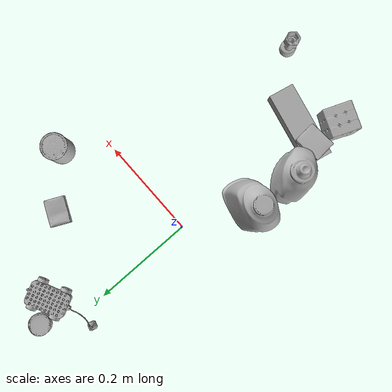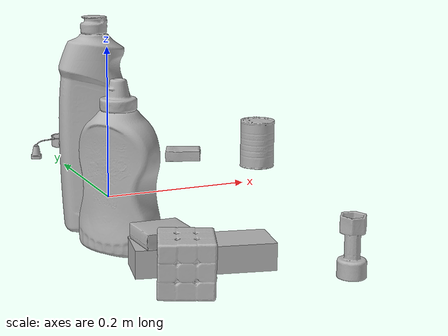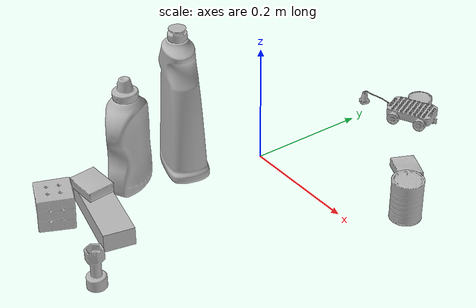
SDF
<sdf version="1.4">
  <world name="default">
    <light name="light1" type="point">
      <pose>0 0 1 0 0 0</pose>
      <diffuse>3 3 3 1</diffuse>
      <specular>3 3 3 1</specular>
    </light>
    <light name="light2" type="point">
      <pose>0 0.5 2 0 0 0</pose>
      <diffuse>1 1 1 1</diffuse>
      <specular>1 1 1 1</specular>
    </light>
    <light name="light3" type="point">
      <pose>0 0.5 2 0 0 0</pose>
      <diffuse>3 3 3 1</diffuse>
      <specular>3 3 3 1</specular>
    </light>
    <scene>
      <ambient>0.7 0.7 0.7</ambient>
    </scene>
    <model name="bottle1">
      <link name="link_bottle1">
        <collision name="default">
          <geometry>
            <mesh>
              <uri>model://mustard_bottle/collision_meshes/collision.obj</uri>
              <scale>1.0 1.0 1.0</scale>
            </mesh>
          </geometry>
          <surface>
            <friction>
              <ode>
                <mu>0.5</mu>
                <mu2>0.5</mu2>
              </ode>
            </friction>
          <contact>
        <ode>
            <max_vel>0</max_vel>
            <min_depth>0.0001</min_depth>
            <kp>1e8</kp>
        </ode>
    </contact></surface>
        </collision>
        <visual name="default">
          <geometry>
            <mesh>
              <uri>model://mustard_bottle/visual_meshes/visual.dae</uri>
              <scale>1.0 1.0 1.0</scale>
            </mesh>
          </geometry>
        </visual>
        <inertial>
          <mass>0.7866348028182983</mass>
          <pose>0.0005032454500906169 -0.00015647400869056582 -0.0174757931381464 0.00041823249995057767 0.0009465787698991903 0.02485370186883952</pose>
          <inertia>
            <ixx>0.0021843775</ixx>
            <iyy>0.0019166061</iyy>
            <izz>0.0005756938</izz>
            <ixy>0</ixy>
            <ixz>0</ixz>
            <iyz>0</iyz>
          </inertia>
        </inertial>
      </link>
      <pose>-0.06126359477639198 -0.21154621243476868 0.09615202248096466 1.5644514232740338e-05 1.6945516001132157e-05 -2.594903205870147</pose>
    </model>
    <model name="bottle2">
      <link name="link_bottle2">
        <collision name="default">
          <geometry>
            <mesh>
              <uri>model://bleach_cleanser/collision_meshes/collision.obj</uri>
              <scale>1.0 1.0 1.0</scale>
            </mesh>
          </geometry>
          <surface>
            <friction>
              <ode>
                <mu>0.5</mu>
                <mu2>0.5</mu2>
              </ode>
            </friction>
          <contact>
        <ode>
            <max_vel>0</max_vel>
            <min_depth>0.0001</min_depth>
            <kp>1e8</kp>
        </ode>
    </contact></surface>
        </collision>
        <visual name="default">
          <geometry>
            <mesh>
              <uri>model://bleach_cleanser/visual_meshes/visual.dae</uri>
              <scale>1.0 1.0 1.0</scale>
            </mesh>
          </geometry>
        </visual>
        <inertial>
          <mass>1.5776710510253906</mass>
          <pose>0.00012193183647468686 0.003783883061259985 -0.02442161552608013 -0.07381671362264838 0.0004201168949340897 -0.006875045535038288</pose>
          <inertia>
            <ixx>0.007678755</ixx>
            <iyy>0.0071554743</iyy>
            <izz>0.0013128674</izz>
            <ixy>0</ixy>
            <ixz>0</ixz>
            <iyz>0</iyz>
          </inertia>
        </inertial>
      </link>
      <pose>-0.04816955327987671 -0.11963862925767899 0.12580148875713348 -0.00024463327821483183 -0.0006389117676771186 1.3118123676689157</pose>
    </model>
    <model name="toy1">
      <link name="link_toy1">
        <collision name="default">
          <geometry>
            <mesh>
              <uri>model://g_lego_duplo/collision_meshes/collision.obj</uri>
              <scale>0.5 0.5 0.5</scale>
            </mesh>
          </geometry>
          <surface>
            <friction>
              <ode>
                <mu>0.5</mu>
                <mu2>0.5</mu2>
              </ode>
            </friction>
          <contact>
        <ode>
            <max_vel>0</max_vel>
            <min_depth>0.0001</min_depth>
            <kp>1e8</kp>
        </ode>
    </contact></surface>
        </collision>
        <visual name="default">
          <geometry>
            <mesh>
              <uri>model://g_lego_duplo/visual_meshes/visual.dae</uri>
              <scale>0.5 0.5 0.5</scale>
            </mesh>
          </geometry>
        </visual>
        <inertial>
          <mass>0.06580430269241333</mass>
          <pose>-0.025023844093084335 0.0008777321199886501 0.0019403373589739203 0.010962977320182745 0.038108249742412996 -0.09653031078073558</pose>
          <inertia>
            <ixx>2.3837789e-05</ixx>
            <iyy>7.206929e-05</iyy>
            <izz>9.016138e-05</izz>
            <ixy>0</ixy>
            <ixz>0</ixz>
            <iyz>0</iyz>
          </inertia>
        </inertial>
      </link>
      <pose>0.03637734055519104 0.26856356859207153 0.014929626137018204 -0.0018774814978823706 -0.0034951986077904574 -2.69807304125055</pose>
    </model>
    <model name="toy2">
      <link name="link_toy2">
        <collision name="default">
          <geometry>
            <mesh>
              <uri>model://c_toy_airplane/collision_meshes/collision.obj</uri>
              <scale>1.0 1.0 1.0</scale>
            </mesh>
          </geometry>
          <surface>
            <friction>
              <ode>
                <mu>0.5</mu>
                <mu2>0.5</mu2>
              </ode>
            </friction>
          <contact>
        <ode>
            <max_vel>0</max_vel>
            <min_depth>0.0001</min_depth>
            <kp>1e8</kp>
        </ode>
    </contact></surface>
        </collision>
        <visual name="default">
          <geometry>
            <mesh>
              <uri>model://c_toy_airplane/visual_meshes/visual.dae</uri>
              <scale>1.0 1.0 1.0</scale>
            </mesh>
          </geometry>
        </visual>
        <inertial>
          <mass>0.012545601464807987</mass>
          <pose>-0.00023024262918625027 -4.4310368707556336e-07 -0.0060805282555520535 -0.006192226732466636 -0.01679790977646328 0.7654621556572541</pose>
          <inertia>
            <ixx>5.760684e-06</ixx>
            <iyy>5.744425e-06</iyy>
            <izz>1.3524945e-06</izz>
            <ixy>0</ixy>
            <ixz>0</ixz>
            <iyz>0</iyz>
          </inertia>
        </inertial>
      </link>
      <pose>0.12752340734004974 -0.38444942235946655 0.0335121788084507 -0.00010586359456579966 -3.6532394572631406e-05 -0.91597542825488</pose>
    </model>
    <model name="can1">
      <link name="link_can1">
        <collision name="default">
          <geometry>
            <mesh>
              <uri>model://tuna_fish_can/collision_meshes/collision.obj</uri>
              <scale>0.5 0.5 0.5</scale>
            </mesh>
          </geometry>
          <surface>
            <friction>
              <ode>
                <mu>0.5</mu>
                <mu2>0.5</mu2>
              </ode>
            </friction>
          <contact>
        <ode>
            <max_vel>0</max_vel>
            <min_depth>0.0001</min_depth>
            <kp>1e8</kp>
        </ode>
    </contact></surface>
        </collision>
        <visual name="default">
          <geometry>
            <mesh>
              <uri>model://tuna_fish_can/visual_meshes/visual.dae</uri>
              <scale>0.5 0.5 0.5</scale>
            </mesh>
          </geometry>
        </visual>
        <inertial>
          <mass>0.0216250978410244</mass>
          <pose>-2.036200021393597e-05 -7.256498065544292e-06 -0.0005269024986773729 -0.0017944779234091367 0.00017161663308651613 0.24053681665098822</pose>
          <inertia>
            <ixx>2.923745e-06</ixx>
            <iyy>2.9115588e-06</iyy>
            <izz>5.002946e-06</izz>
            <ixy>0</ixy>
            <ixz>0</ixz>
            <iyz>0</iyz>
          </inertia>
        </inertial>
      </link>
      <pose>0.03852301463484764 0.3233444094657898 0.008519996888935566 7.632926068516133e-06 -5.452414037715946e-07 2.552002454763454</pose>
    </model>
    <model name="can2">
      <link name="link_can2">
        <collision name="default">
          <geometry>
            <mesh>
              <uri>model://master_chef_can/collision_meshes/collision.obj</uri>
              <scale>0.5 0.5 0.5</scale>
            </mesh>
          </geometry>
          <surface>
            <friction>
              <ode>
                <mu>0.5</mu>
                <mu2>0.5</mu2>
              </ode>
            </friction>
          <contact>
        <ode>
            <max_vel>0</max_vel>
            <min_depth>0.0001</min_depth>
            <kp>1e8</kp>
        </ode>
    </contact></surface>
        </collision>
        <visual name="default">
          <geometry>
            <mesh>
              <uri>model://master_chef_can/visual_meshes/visual.dae</uri>
              <scale>0.5 0.5 0.5</scale>
            </mesh>
          </geometry>
        </visual>
        <inertial>
          <mass>0.16779577732086182</mass>
          <pose>-4.661964703700505e-05 1.3926845099376806e-07 -5.080012488178909e-05 -0.001799515621871614 0.0006479176547847844 -0.610266079213139</pose>
          <inertia>
            <ixx>9.848473e-05</ixx>
            <iyy>9.77599e-05</iyy>
            <izz>5.442035e-05</izz>
            <ixy>0</ixy>
            <ixz>0</ixz>
            <iyz>0</iyz>
          </inertia>
        </inertial>
      </link>
      <pose>0.26491478085517883 0.07887846976518631 0.03530199080705643 -1.6022085820905966e-06 -1.0929845965953231e-06 2.9377988648225704</pose>
    </model>
    <model name="box1">
      <link name="link_box1">
        <collision name="default">
          <geometry>
            <mesh>
              <uri>model://rubiks_cube/collision_meshes/collision.obj</uri>
              <scale>1.0 1.0 1.0</scale>
            </mesh>
          </geometry>
          <surface>
            <friction>
              <ode>
                <mu>0.5</mu>
                <mu2>0.5</mu2>
              </ode>
            </friction>
          <contact>
        <ode>
            <max_vel>0</max_vel>
            <min_depth>0.0001</min_depth>
            <kp>1e8</kp>
        </ode>
    </contact></surface>
        </collision>
        <visual name="default">
          <geometry>
            <mesh>
              <uri>model://rubiks_cube/visual_meshes/visual.dae</uri>
              <scale>1.0 1.0 1.0</scale>
            </mesh>
          </geometry>
        </visual>
        <inertial>
          <mass>0.232398122549057</mass>
          <pose>2.6721041649580002e-05 5.256967051536776e-05 -7.264316082000732e-06 -0.05467303663832053 -0.0981402329670775 -0.034454960240128486</pose>
          <inertia>
            <ixx>0.00012841556</ixx>
            <iyy>0.00012781669</iyy>
            <izz>0.00012947968</izz>
            <ixy>0</ixy>
            <ixz>0</ixz>
            <iyz>0</iyz>
          </inertia>
        </inertial>
      </link>
      <pose>-0.044771917164325714 -0.3556332290172577 0.028678972274065018 -3.494826508131905e-06 -9.247057103657622e-07 -0.39152847005659025</pose>
    </model>
    <model name="box2">
      <link name="link_box2">
        <collision name="default">
          <geometry>
            <mesh>
              <uri>model://jenga/collision_meshes/collision.obj</uri>
              <scale>1.0 1.0 1.0</scale>
            </mesh>
          </geometry>
          <surface>
            <friction>
              <ode>
                <mu>0.5</mu>
                <mu2>0.5</mu2>
              </ode>
            </friction>
          <contact>
        <ode>
            <max_vel>0</max_vel>
            <min_depth>0.0001</min_depth>
            <kp>1e8</kp>
        </ode>
    </contact></surface>
        </collision>
        <visual name="default">
          <geometry>
            <mesh>
              <uri>model://jenga/visual_meshes/visual.dae</uri>
              <scale>1.0 1.0 1.0</scale>
            </mesh>
          </geometry>
        </visual>
        <inertial>
          <mass>0.2088489830493927</mass>
          <pose>-2.502855807051674e-07 -0.0001025000965455547 -4.092339804628864e-05 0.0 -7.342154049184251e-07 0.0</pose>
          <inertia>
            <ixx>5.7793575e-05</ixx>
            <iyy>0.00039160773</iyy>
            <izz>0.00041807455</izz>
            <ixy>0</ixy>
            <ixz>0</ixz>
            <iyz>0</iyz>
          </inertia>
        </inertial>
      </link>
      <pose>-0.0009989519603550434 -0.2974590063095093 0.015000002458691597 1.8650495235838914e-07 -1.955364857539599e-08 -0.2120508732079637</pose>
    </model>
    <model name="box3">
      <link name="link_box3">
        <collision name="default">
          <geometry>
            <mesh>
              <uri>model://cracker_box/collision_meshes/collision.obj</uri>
              <scale>0.25 0.25 0.25</scale>
            </mesh>
          </geometry>
          <surface>
            <friction>
              <ode>
                <mu>0.5</mu>
                <mu2>0.5</mu2>
              </ode>
            </friction>
          <contact>
        <ode>
            <max_vel>0</max_vel>
            <min_depth>0.0001</min_depth>
            <kp>1e8</kp>
        </ode>
    </contact></surface>
        </collision>
        <visual name="default">
          <geometry>
            <mesh>
              <uri>model://cracker_box/visual_meshes/visual.dae</uri>
              <scale>0.25 0.25 0.25</scale>
            </mesh>
          </geometry>
        </visual>
        <inertial>
          <mass>0.039105094969272614</mass>
          <pose>0.00023660340229980648 6.358561222441494e-05 -0.00042573834070935845 -0.0003162078884583708 -0.011106488668689832 0.0025467950032832675</pose>
          <inertia>
            <ixx>6.216619e-06</ixx>
            <iyy>1.0264859e-05</iyy>
            <izz>1.4648894e-05</izz>
            <ixy>0</ixy>
            <ixz>0</ixz>
            <iyz>0</iyz>
          </inertia>
        </inertial>
      </link>
      <pose>0.17993338406085968 0.160417839884758 0.009120453149080276 -0.011787882401494436 -0.007367152005481557 -0.44579891244961084</pose>
    </model>
    <model name="box4">
      <link name="link_box4">
        <collision name="default">
          <geometry>
            <mesh>
              <uri>model://pudding_box/collision_meshes/collision.obj</uri>
              <scale>0.5 0.5 0.5</scale>
            </mesh>
          </geometry>
          <surface>
            <friction>
              <ode>
                <mu>0.5</mu>
                <mu2>0.5</mu2>
              </ode>
            </friction>
          <contact>
        <ode>
            <max_vel>0</max_vel>
            <min_depth>0.0001</min_depth>
            <kp>1e8</kp>
        </ode>
    </contact></surface>
        </collision>
        <visual name="default">
          <geometry>
            <mesh>
              <uri>model://pudding_box/visual_meshes/visual.dae</uri>
              <scale>0.5 0.5 0.5</scale>
            </mesh>
          </geometry>
        </visual>
        <inertial>
          <mass>0.03813362866640091</mass>
          <pose>0.00024474109522998333 0.00040339428232982755 -0.0002594413817860186 0.005213101815861678 -0.006603796390356506 0.020079825165494957</pose>
          <inertia>
            <ixx>1.0777026e-05</ixx>
            <iyy>7.25086e-06</iyy>
            <izz>1.5915095e-05</izz>
            <ixy>0</ixy>
            <ixz>0</ixz>
            <iyz>0</iyz>
          </inertia>
        </inertial>
      </link>
      <pose>-0.0434737466275692 -0.2912995219230652 0.03986290469765663 0.022346522283128816 -0.01139338195515819 1.6407517196888441</pose>
    </model>
  <physics type="ode">
      <max_contacts>50</max_contacts>
      <ode>
        <solver>
          <type>quick</type>
          <iters>75</iters>
        </solver>
        <constraints>
          <contact_max_correcting_vel>0</contact_max_correcting_vel>
          <contact_surface_layer>0</contact_surface_layer>
        </constraints>
      </ode>
    </physics></world>
</sdf>
